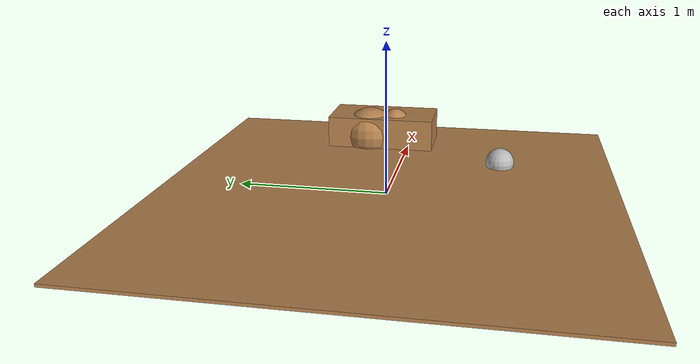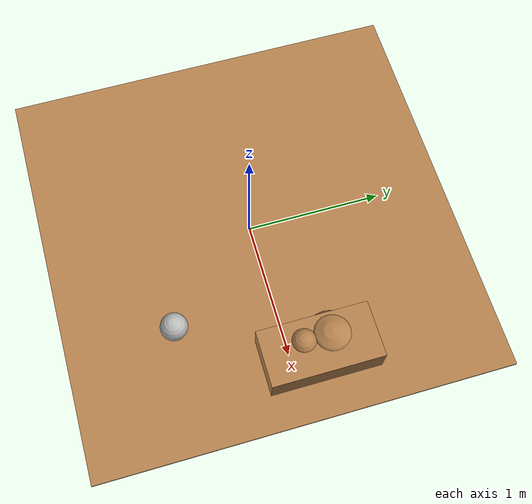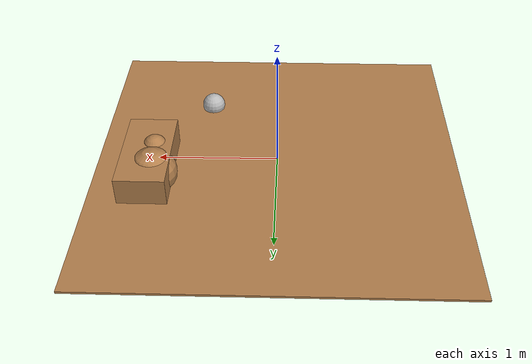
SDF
<sdf version="1.4">
 <world name="default">
  <physics type="ode">
   <gravity>0.000000 0.000000 0.00000</gravity>
   <ode>
    <solver><type>quick</type><iters>50</iters><precon_iters>0</precon_iters><sor>1.300000</sor></solver>
   </ode>
   <max_contacts>1</max_contacts>
  </physics>
  <include><uri>model://sun</uri></include>
  <model name="sphere_1">
   <static>true</static>
   <pose>0.60 -0.72 0.05 0 0 0</pose>
   <link name="table_link">
    <collision name="collision"><geometry><sphere><radius>0.1</radius></sphere></geometry></collision>
    <visual name="visual">
     <transparency>0.0</transparency>
     <geometry><sphere><radius>0.1</radius></sphere></geometry>
    </visual>
   </link>
  </model>
  <model name="sphere_on_support">
   <static>true</static>
   <pose>1.0 0.1 0.2 0 0 0</pose>
   <link name="table_link">
    <collision name="collision"><geometry><sphere><radius>0.1</radius></sphere></geometry></collision>
    <visual name="visual">
     <geometry><sphere><radius>0.1</radius></sphere></geometry>
     <material>
      <script><uri>file://media/materials/scripts/gazebo.material</uri><name>Gazebo/Wood</name></script>
     </material>
    </visual>
   </link>
  </model>
  <model name="sphere_on_support2">
   <static>true</static>
   <pose>1.0 0.3 0.1 0 0 0</pose>
   <link name="table_link">
    <collision name="collision"><geometry><sphere><radius>0.2</radius></sphere></geometry></collision>
    <visual name="visual">
     <geometry><sphere><radius>0.2</radius></sphere></geometry>
     <material>
      <script><uri>file://media/materials/scripts/gazebo.material</uri><name>Gazebo/Wood</name></script>
     </material>
    </visual>
   </link>
  </model>
  <model name="Support">
   <static>true</static>
   <pose>1.05 0.2 0.1 0 0 0</pose>
   <link name="table_link">
    <collision name="collision"><geometry><box><size>0.4 0.8 0.3</size></box></geometry></collision>
    <visual name="visual">
     <geometry><box><size>0.4 0.8 0.3</size></box></geometry>
     <material>
      <script><uri>file://media/materials/scripts/gazebo.material</uri><name>Gazebo/Wood</name></script>
     </material>
    </visual>
   </link>
  </model>
  <model name="table">
   <static>true</static>
   <pose>0 0 0.01 0 0 0</pose>
   <link name="table_link">
    <collision name="collision"><geometry><box><size>3 3 0.019</size></box></geometry></collision>
    <visual name="visual">
     <geometry><box><size>3 3  0.019</size></box></geometry>
     <material>
      <script><uri>file://media/materials/scripts/gazebo.material</uri><name>Gazebo/Wood</name></script>
     </material>
    </visual>
   </link>
  </model>
 </world>
</sdf>
